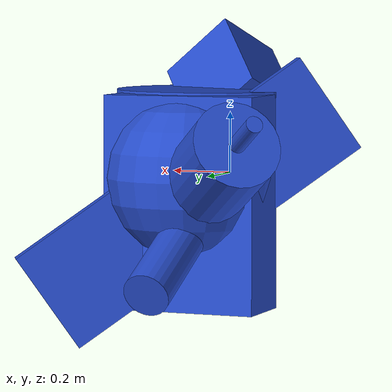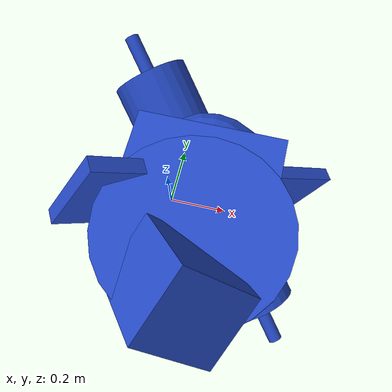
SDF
<?xml version='1.0'?>
<sdf version='1.6'>
  <model name='Blue_complex'>
    <link name='link_0'>
      <inertial>
        <mass>0.0837758</mass>
        <inertia>
          <ixx>0.00382824</ixx>
          <ixy>0</ixy>
          <ixz>0</ixz>
          <iyy>0.00532515</iyy>
          <iyz>0</iyz>
          <izz>0.00223663</izz>
        </inertia>
        <pose frame=''>0 0 0 0 -0 0</pose>
      </inertial>
      <pose frame=''>0.108369 0.082303 -0.093925 0 -0 0</pose>
      <visual name='visual'>
        <pose frame=''>0 0 0 0 -0 0</pose>
        <geometry>
          <box>
            <size>0.517102 0.230169 0.70383</size>
          </box>
        </geometry>
        <material>
          <lighting>1</lighting>
          <script>
            <uri>file://media/materials/scripts/gazebo.material</uri>
            <name>Gazebo/Blue</name>
          </script>
          <ambient>0 0 1 0</ambient>
          <diffuse>0 0 1 0</diffuse>
          <specular>0.01 0.01 0.01 1</specular>
          <emissive>0 0 0 1</emissive>
          <shader type='vertex'>
            <normal_map>__default__</normal_map>
          </shader>
        </material>
        <transparency>0</transparency>
        <cast_shadows>1</cast_shadows>
      </visual>
      <collision name='collision'>
        <laser_retro>0</laser_retro>
        <max_contacts>10</max_contacts>
        <pose frame=''>0 0 0 0 -0 0</pose>
        <geometry>
          <box>
            <size>0.517102 0.230169 0.70383</size>
          </box>
        </geometry>
        <surface>
          <friction>
            <ode>
              <mu>1</mu>
              <mu2>1</mu2>
              <fdir1>0 0 0</fdir1>
              <slip1>0</slip1>
              <slip2>0</slip2>
            </ode>
            <torsional>
              <coefficient>1</coefficient>
              <patch_radius>0</patch_radius>
              <surface_radius>0</surface_radius>
              <use_patch_radius>1</use_patch_radius>
              <ode>
                <slip>0</slip>
              </ode>
            </torsional>
          </friction>
          <bounce>
            <restitution_coefficient>0</restitution_coefficient>
            <threshold>1e+06</threshold>
          </bounce>
          <contact>
            <collide_without_contact>0</collide_without_contact>
            <collide_without_contact_bitmask>1</collide_without_contact_bitmask>
            <collide_bitmask>1</collide_bitmask>
            <ode>
              <soft_cfm>0</soft_cfm>
              <soft_erp>0.2</soft_erp>
              <kp>1e+13</kp>
              <kd>1</kd>
              <max_vel>0.01</max_vel>
              <min_depth>0</min_depth>
            </ode>
            <bullet>
              <split_impulse>1</split_impulse>
              <split_impulse_penetration_threshold>-0.01</split_impulse_penetration_threshold>
              <soft_cfm>0</soft_cfm>
              <soft_erp>0.2</soft_erp>
              <kp>1e+13</kp>
              <kd>1</kd>
            </bullet>
          </contact>
        </surface>
      </collision>
    </link>
    <link name='link_1'>
      <inertial>
        <mass>0.158198</mass>
        <inertia>
          <ixx>0.00462748</ixx>
          <ixy>0</ixy>
          <ixz>0</ixz>
          <iyy>0.00462748</iyy>
          <iyz>0</iyz>
          <izz>0.00462748</izz>
        </inertia>
        <pose frame=''>0 0 0 0 -0 0</pose>
      </inertial>
      <pose frame=''>0.108369 0.094761 -0.012431 0 -0 0</pose>
      <visual name='visual'>
        <pose frame=''>0 0 0 0 -0 0</pose>
        <geometry>
          <sphere>
            <radius>0.270422</radius>
          </sphere>
        </geometry>
        <material>
          <lighting>1</lighting>
          <script>
            <uri>file://media/materials/scripts/gazebo.material</uri>
            <name>Gazebo/Blue</name>
          </script>
          <ambient>0 0 1 0</ambient>
          <diffuse>0 0 1 0</diffuse>
          <specular>0.01 0.01 0.01 1</specular>
          <emissive>0 0 0 1</emissive>
          <shader type='vertex'>
            <normal_map>__default__</normal_map>
          </shader>
        </material>
        <transparency>0</transparency>
        <cast_shadows>1</cast_shadows>
      </visual>
      <collision name='collision'>
        <laser_retro>0</laser_retro>
        <max_contacts>10</max_contacts>
        <pose frame=''>0 0 0 0 -0 0</pose>
        <geometry>
          <sphere>
            <radius>0.270422</radius>
          </sphere>
        </geometry>
        <surface>
          <friction>
            <ode>
              <mu>1</mu>
              <mu2>1</mu2>
              <fdir1>0 0 0</fdir1>
              <slip1>0</slip1>
              <slip2>0</slip2>
            </ode>
            <torsional>
              <coefficient>1</coefficient>
              <patch_radius>0</patch_radius>
              <surface_radius>0</surface_radius>
              <use_patch_radius>1</use_patch_radius>
              <ode>
                <slip>0</slip>
              </ode>
            </torsional>
          </friction>
          <bounce>
            <restitution_coefficient>0</restitution_coefficient>
            <threshold>1e+06</threshold>
          </bounce>
          <contact>
            <collide_without_contact>0</collide_without_contact>
            <collide_without_contact_bitmask>1</collide_without_contact_bitmask>
            <collide_bitmask>1</collide_bitmask>
            <ode>
              <soft_cfm>0</soft_cfm>
              <soft_erp>0.2</soft_erp>
              <kp>1e+13</kp>
              <kd>1</kd>
              <max_vel>0.01</max_vel>
              <min_depth>0</min_depth>
            </ode>
            <bullet>
              <split_impulse>1</split_impulse>
              <split_impulse_penetration_threshold>-0.01</split_impulse_penetration_threshold>
              <soft_cfm>0</soft_cfm>
              <soft_erp>0.2</soft_erp>
              <kp>1e+13</kp>
              <kd>1</kd>
            </bullet>
          </contact>
        </surface>
      </collision>
    </link>
    <link name='link_2'>
      <inertial>
        <mass>0.0225405</mass>
        <inertia>
          <ixx>0.00191013</ixx>
          <ixy>0</ixy>
          <ixz>0</ixz>
          <iyy>0.00191013</iyy>
          <iyz>0</iyz>
          <izz>6.35098e-05</izz>
        </inertia>
        <pose frame=''>0 0 0 0 -0 0</pose>
      </inertial>
      <pose frame=''>0.075903 0.080195 -0.12294 1.10553 -0 0</pose>
      <visual name='visual'>
        <pose frame=''>0 0 0 0 -0 0</pose>
        <geometry>
          <cylinder>
            <radius>0.0750678</radius>
            <length>1</length>
          </cylinder>
        </geometry>
        <material>
          <lighting>1</lighting>
          <script>
            <uri>file://media/materials/scripts/gazebo.material</uri>
            <name>Gazebo/Blue</name>
          </script>
          <ambient>0 0 1 0</ambient>
          <diffuse>0 0 1 0</diffuse>
          <specular>0.01 0.01 0.01 1</specular>
          <emissive>0 0 0 1</emissive>
          <shader type='vertex'>
            <normal_map>__default__</normal_map>
          </shader>
        </material>
        <transparency>0</transparency>
        <cast_shadows>1</cast_shadows>
      </visual>
      <collision name='collision'>
        <laser_retro>0</laser_retro>
        <max_contacts>10</max_contacts>
        <pose frame=''>0 0 0 0 -0 0</pose>
        <geometry>
          <cylinder>
            <radius>0.075068</radius>
            <length>1</length>
          </cylinder>
        </geometry>
        <surface>
          <friction>
            <ode>
              <mu>1</mu>
              <mu2>1</mu2>
              <fdir1>0 0 0</fdir1>
              <slip1>0</slip1>
              <slip2>0</slip2>
            </ode>
            <torsional>
              <coefficient>1</coefficient>
              <patch_radius>0</patch_radius>
              <surface_radius>0</surface_radius>
              <use_patch_radius>1</use_patch_radius>
              <ode>
                <slip>0</slip>
              </ode>
            </torsional>
          </friction>
          <bounce>
            <restitution_coefficient>0</restitution_coefficient>
            <threshold>1e+06</threshold>
          </bounce>
          <contact>
            <collide_without_contact>0</collide_without_contact>
            <collide_without_contact_bitmask>1</collide_without_contact_bitmask>
            <collide_bitmask>1</collide_bitmask>
            <ode>
              <soft_cfm>0</soft_cfm>
              <soft_erp>0.2</soft_erp>
              <kp>1e+13</kp>
              <kd>1</kd>
              <max_vel>0.01</max_vel>
              <min_depth>0</min_depth>
            </ode>
            <bullet>
              <split_impulse>1</split_impulse>
              <split_impulse_penetration_threshold>-0.01</split_impulse_penetration_threshold>
              <soft_cfm>0</soft_cfm>
              <soft_erp>0.2</soft_erp>
              <kp>1e+13</kp>
              <kd>1</kd>
            </bullet>
          </contact>
        </surface>
      </collision>
    </link>
    <link name='link_2_clone'>
      <inertial>
        <mass>0.0819213</mass>
        <inertia>
          <ixx>0.00724624</ixx>
          <ixy>0</ixy>
          <ixz>0</ixz>
          <iyy>0.00724624</iyy>
          <iyz>0</iyz>
          <izz>0.000838935</izz>
        </inertia>
        <pose frame=''>0 0 0 0 -0 0</pose>
      </inertial>
      <pose frame=''>0.108369 0.094761 -0.093925 2.048 -0.329966 0.559782</pose>
      <visual name='visual'>
        <pose frame=''>0 0 0 0 -0 0</pose>
        <geometry>
          <cylinder>
            <radius>0.143114</radius>
            <length>1</length>
          </cylinder>
        </geometry>
        <material>
          <lighting>1</lighting>
          <script>
            <uri>file://media/materials/scripts/gazebo.material</uri>
            <name>Gazebo/Blue</name>
          </script>
          <ambient>0 0 1 0</ambient>
          <diffuse>0 0 1 0</diffuse>
          <specular>0.01 0.01 0.01 1</specular>
          <emissive>0 0 0 1</emissive>
          <shader type='vertex'>
            <normal_map>__default__</normal_map>
          </shader>
          <shader type='pixel'/>
        </material>
        <transparency>0</transparency>
        <cast_shadows>1</cast_shadows>
      </visual>
      <collision name='collision'>
        <laser_retro>0</laser_retro>
        <max_contacts>10</max_contacts>
        <pose frame=''>0 0 0 0 -0 0</pose>
        <geometry>
          <cylinder>
            <radius>0.143114</radius>
            <length>1</length>
          </cylinder>
        </geometry>
        <surface>
          <friction>
            <ode>
              <mu>1</mu>
              <mu2>1</mu2>
              <fdir1>0 0 0</fdir1>
              <slip1>0</slip1>
              <slip2>0</slip2>
            </ode>
            <torsional>
              <coefficient>1</coefficient>
              <patch_radius>0</patch_radius>
              <surface_radius>0</surface_radius>
              <use_patch_radius>1</use_patch_radius>
              <ode>
                <slip>0</slip>
              </ode>
            </torsional>
          </friction>
          <bounce>
            <restitution_coefficient>0</restitution_coefficient>
            <threshold>1e+06</threshold>
          </bounce>
          <contact>
            <collide_without_contact>0</collide_without_contact>
            <collide_without_contact_bitmask>1</collide_without_contact_bitmask>
            <collide_bitmask>1</collide_bitmask>
            <ode>
              <soft_cfm>0</soft_cfm>
              <soft_erp>0.2</soft_erp>
              <kp>1e+13</kp>
              <kd>1</kd>
              <max_vel>0.01</max_vel>
              <min_depth>0</min_depth>
            </ode>
            <bullet>
              <split_impulse>1</split_impulse>
              <split_impulse_penetration_threshold>-0.01</split_impulse_penetration_threshold>
              <soft_cfm>0</soft_cfm>
              <soft_erp>0.2</soft_erp>
              <kp>1e+13</kp>
              <kd>1</kd>
            </bullet>
          </contact>
        </surface>
      </collision>
    </link>
    <link name='link_2_clone_clone'>
      <inertial>
        <mass>0.00392473</mass>
        <inertia>
          <ixx>0.000578317</ixx>
          <ixy>0</ixy>
          <ixz>0</ixz>
          <iyy>0.000578317</iyy>
          <iyz>0</iyz>
          <izz>1.45086e-06</izz>
        </inertia>
        <pose frame=''>0 0 0 0 -0 0</pose>
      </inertial>
      <pose frame=''>0.108369 0.094761 -0.093925 2.048 -0.329966 0.559782</pose>
      <visual name='visual'>
        <pose frame=''>0 0 0 0 -0 0</pose>
        <geometry>
          <cylinder>
            <radius>0.0271909</radius>
            <length>1.32891</length>
          </cylinder>
        </geometry>
        <material>
          <lighting>1</lighting>
          <script>
            <uri>file://media/materials/scripts/gazebo.material</uri>
            <name>Gazebo/Blue</name>
          </script>
          <ambient>0 0 1 0</ambient>
          <diffuse>0 0 1 0</diffuse>
          <specular>0.01 0.01 0.01 1</specular>
          <emissive>0 0 0 1</emissive>
          <shader type='vertex'>
            <normal_map>__default__</normal_map>
          </shader>
          <shader type='pixel'/>
        </material>
        <transparency>0</transparency>
        <cast_shadows>1</cast_shadows>
      </visual>
      <collision name='collision'>
        <laser_retro>0</laser_retro>
        <max_contacts>10</max_contacts>
        <pose frame=''>0 0 0 0 -0 0</pose>
        <geometry>
          <cylinder>
            <radius>0.027191</radius>
            <length>1.32891</length>
          </cylinder>
        </geometry>
        <surface>
          <friction>
            <ode>
              <mu>1</mu>
              <mu2>1</mu2>
              <fdir1>0 0 0</fdir1>
              <slip1>0</slip1>
              <slip2>0</slip2>
            </ode>
            <torsional>
              <coefficient>1</coefficient>
              <patch_radius>0</patch_radius>
              <surface_radius>0</surface_radius>
              <use_patch_radius>1</use_patch_radius>
              <ode>
                <slip>0</slip>
              </ode>
            </torsional>
          </friction>
          <bounce>
            <restitution_coefficient>0</restitution_coefficient>
            <threshold>1e+06</threshold>
          </bounce>
          <contact>
            <collide_without_contact>0</collide_without_contact>
            <collide_without_contact_bitmask>1</collide_without_contact_bitmask>
            <collide_bitmask>1</collide_bitmask>
            <ode>
              <soft_cfm>0</soft_cfm>
              <soft_erp>0.2</soft_erp>
              <kp>1e+13</kp>
              <kd>1</kd>
              <max_vel>0.01</max_vel>
              <min_depth>0</min_depth>
            </ode>
            <bullet>
              <split_impulse>1</split_impulse>
              <split_impulse_penetration_threshold>-0.01</split_impulse_penetration_threshold>
              <soft_cfm>0</soft_cfm>
              <soft_erp>0.2</soft_erp>
              <kp>1e+13</kp>
              <kd>1</kd>
            </bullet>
          </contact>
        </surface>
      </collision>
    </link>
    <link name='link_3_clone'>
      <inertial>
        <mass>0.0232589</mass>
        <inertia>
          <ixx>0.000257219</ixx>
          <ixy>0</ixy>
          <ixz>0</ixz>
          <iyy>0.00274627</iyy>
          <iyz>0</iyz>
          <izz>0.00250166</izz>
        </inertia>
        <pose frame=''>0 0 0 0 -0 0</pose>
      </inertial>
      <pose frame=''>0.108369 0.094761 -0.093925 -0 0.606722 0.525087</pose>
      <visual name='visual'>
        <pose frame=''>0 0 0 0 -0 0</pose>
        <geometry>
          <box>
            <size>1.13465 0.057033 0.359798</size>
          </box>
        </geometry>
        <material>
          <lighting>1</lighting>
          <script>
            <uri>file://media/materials/scripts/gazebo.material</uri>
            <name>Gazebo/Blue</name>
          </script>
          <ambient>0 0 1 0</ambient>
          <diffuse>0 0 1 0</diffuse>
          <specular>0.01 0.01 0.01 1</specular>
          <emissive>0 0 0 1</emissive>
          <shader type='vertex'>
            <normal_map>__default__</normal_map>
          </shader>
          <shader type='pixel'/>
        </material>
        <transparency>0</transparency>
        <cast_shadows>1</cast_shadows>
      </visual>
      <collision name='collision'>
        <laser_retro>0</laser_retro>
        <max_contacts>10</max_contacts>
        <pose frame=''>0 0 0 0 -0 0</pose>
        <geometry>
          <box>
            <size>1.13465 0.057033 0.359798</size>
          </box>
        </geometry>
        <surface>
          <friction>
            <ode>
              <mu>1</mu>
              <mu2>1</mu2>
              <fdir1>0 0 0</fdir1>
              <slip1>0</slip1>
              <slip2>0</slip2>
            </ode>
            <torsional>
              <coefficient>1</coefficient>
              <patch_radius>0</patch_radius>
              <surface_radius>0</surface_radius>
              <use_patch_radius>1</use_patch_radius>
              <ode>
                <slip>0</slip>
              </ode>
            </torsional>
          </friction>
          <bounce>
            <restitution_coefficient>0</restitution_coefficient>
            <threshold>1e+06</threshold>
          </bounce>
          <contact>
            <collide_without_contact>0</collide_without_contact>
            <collide_without_contact_bitmask>1</collide_without_contact_bitmask>
            <collide_bitmask>1</collide_bitmask>
            <ode>
              <soft_cfm>0</soft_cfm>
              <soft_erp>0.2</soft_erp>
              <kp>1e+13</kp>
              <kd>1</kd>
              <max_vel>0.01</max_vel>
              <min_depth>0</min_depth>
            </ode>
            <bullet>
              <split_impulse>1</split_impulse>
              <split_impulse_penetration_threshold>-0.01</split_impulse_penetration_threshold>
              <soft_cfm>0</soft_cfm>
              <soft_erp>0.2</soft_erp>
              <kp>1e+13</kp>
              <kd>1</kd>
            </bullet>
          </contact>
        </surface>
      </collision>
    </link>
    <link name='link_4'>
      <inertial>
        <mass>0.00832024</mass>
        <inertia>
          <ixx>0.000216734</ixx>
          <ixy>0</ixy>
          <ixz>0</ixz>
          <iyy>0.000216734</iyy>
          <iyz>0</iyz>
          <izz>0.000432926</izz>
        </inertia>
        <pose frame=''>0 0 0 0 -0 0</pose>
      </inertial>
      <pose frame=''>0.132392 -0.173728 0.256461 0 -0 0</pose>
      <visual name='visual'>
        <pose frame=''>0 0 0 0 -0 0</pose>
        <geometry>
          <cylinder>
            <radius>0.322592</radius>
            <length>0.0197713</length>
          </cylinder>
        </geometry>
        <material>
          <lighting>1</lighting>
          <script>
            <uri>file://media/materials/scripts/gazebo.material</uri>
            <name>Gazebo/Blue</name>
          </script>
          <ambient>0 0 1 0</ambient>
          <diffuse>0 0 1 0</diffuse>
          <specular>0.01 0.01 0.01 1</specular>
          <emissive>0 0 0 1</emissive>
          <shader type='vertex'>
            <normal_map>__default__</normal_map>
          </shader>
        </material>
        <transparency>0</transparency>
        <cast_shadows>1</cast_shadows>
      </visual>
      <collision name='collision'>
        <laser_retro>0</laser_retro>
        <max_contacts>10</max_contacts>
        <pose frame=''>0 0 0 0 -0 0</pose>
        <geometry>
          <cylinder>
            <radius>0.322592</radius>
            <length>0.019771</length>
          </cylinder>
        </geometry>
        <surface>
          <friction>
            <ode>
              <mu>1</mu>
              <mu2>1</mu2>
              <fdir1>0 0 0</fdir1>
              <slip1>0</slip1>
              <slip2>0</slip2>
            </ode>
            <torsional>
              <coefficient>1</coefficient>
              <patch_radius>0</patch_radius>
              <surface_radius>0</surface_radius>
              <use_patch_radius>1</use_patch_radius>
              <ode>
                <slip>0</slip>
              </ode>
            </torsional>
          </friction>
          <bounce>
            <restitution_coefficient>0</restitution_coefficient>
            <threshold>1e+06</threshold>
          </bounce>
          <contact>
            <collide_without_contact>0</collide_without_contact>
            <collide_without_contact_bitmask>1</collide_without_contact_bitmask>
            <collide_bitmask>1</collide_bitmask>
            <ode>
              <soft_cfm>0</soft_cfm>
              <soft_erp>0.2</soft_erp>
              <kp>1e+13</kp>
              <kd>1</kd>
              <max_vel>0.01</max_vel>
              <min_depth>0</min_depth>
            </ode>
            <bullet>
              <split_impulse>1</split_impulse>
              <split_impulse_penetration_threshold>-0.01</split_impulse_penetration_threshold>
              <soft_cfm>0</soft_cfm>
              <soft_erp>0.2</soft_erp>
              <kp>1e+13</kp>
              <kd>1</kd>
            </bullet>
          </contact>
        </surface>
      </collision>
    </link>
    <link name='link_5'>
      <inertial>
        <mass>0.0227008</mass>
        <inertia>
          <ixx>0.000277248</ixx>
          <ixy>0</ixy>
          <ixz>0</ixz>
          <iyy>0.000335637</iyy>
          <iyz>0</iyz>
          <izz>0.000308375</izz>
        </inertia>
        <pose frame=''>0 0 0 0 -0 0</pose>
      </inertial>
      <pose frame=''>0.132392 -0.367796 0.254612 0.585915 -0.675444 -0.815191</pose>
      <visual name='visual'>
        <pose frame=''>0 0 0 0 -0 0</pose>
        <geometry>
          <box>
            <size>0.31135 0.257047 0.283697</size>
          </box>
        </geometry>
        <material>
          <lighting>1</lighting>
          <script>
            <uri>file://media/materials/scripts/gazebo.material</uri>
            <name>Gazebo/Blue</name>
          </script>
          <ambient>0 0 1 0</ambient>
          <diffuse>0 0 1 0</diffuse>
          <specular>0.01 0.01 0.01 1</specular>
          <emissive>0 0 0 1</emissive>
          <shader type='vertex'>
            <normal_map>__default__</normal_map>
          </shader>
        </material>
        <transparency>0</transparency>
        <cast_shadows>1</cast_shadows>
      </visual>
      <collision name='collision'>
        <laser_retro>0</laser_retro>
        <max_contacts>10</max_contacts>
        <pose frame=''>0 0 0 0 -0 0</pose>
        <geometry>
          <box>
            <size>0.31135 0.257047 0.283697</size>
          </box>
        </geometry>
        <surface>
          <friction>
            <ode>
              <mu>1</mu>
              <mu2>1</mu2>
              <fdir1>0 0 0</fdir1>
              <slip1>0</slip1>
              <slip2>0</slip2>
            </ode>
            <torsional>
              <coefficient>1</coefficient>
              <patch_radius>0</patch_radius>
              <surface_radius>0</surface_radius>
              <use_patch_radius>1</use_patch_radius>
              <ode>
                <slip>0</slip>
              </ode>
            </torsional>
          </friction>
          <bounce>
            <restitution_coefficient>0</restitution_coefficient>
            <threshold>1e+06</threshold>
          </bounce>
          <contact>
            <collide_without_contact>0</collide_without_contact>
            <collide_without_contact_bitmask>1</collide_without_contact_bitmask>
            <collide_bitmask>1</collide_bitmask>
            <ode>
              <soft_cfm>0</soft_cfm>
              <soft_erp>0.2</soft_erp>
              <kp>1e+13</kp>
              <kd>1</kd>
              <max_vel>0.01</max_vel>
              <min_depth>0</min_depth>
            </ode>
            <bullet>
              <split_impulse>1</split_impulse>
              <split_impulse_penetration_threshold>-0.01</split_impulse_penetration_threshold>
              <soft_cfm>0</soft_cfm>
              <soft_erp>0.2</soft_erp>
              <kp>1e+13</kp>
              <kd>1</kd>
            </bullet>
          </contact>
        </surface>
      </collision>
    </link>
    <joint name='link_0_JOINT_1' type='fixed'>
      <parent>link_0</parent>
      <child>link_2</child>
      <pose frame=''>0 0 0 0 -0 0</pose>
      <physics>
        <ode>
          <limit>
            <cfm>0</cfm>
            <erp>0.2</erp>
          </limit>
          <suspension>
            <cfm>0</cfm>
            <erp>0.2</erp>
          </suspension>
        </ode>
      </physics>
    </joint>
    <joint name='link_0_JOINT_2' type='fixed'>
      <parent>link_0</parent>
      <child>link_2_clone</child>
      <pose frame=''>0 0 0 0 -0 0</pose>
      <physics>
        <ode>
          <limit>
            <cfm>0</cfm>
            <erp>0.2</erp>
          </limit>
          <suspension>
            <cfm>0</cfm>
            <erp>0.2</erp>
          </suspension>
        </ode>
      </physics>
    </joint>
    <joint name='link_0_JOINT_3' type='fixed'>
      <parent>link_0</parent>
      <child>link_2_clone_clone</child>
      <pose frame=''>0 0 0 0 -0 0</pose>
      <physics>
        <ode>
          <limit>
            <cfm>0</cfm>
            <erp>0.2</erp>
          </limit>
          <suspension>
            <cfm>0</cfm>
            <erp>0.2</erp>
          </suspension>
        </ode>
      </physics>
    </joint>
    <joint name='link_0_JOINT_5' type='fixed'>
      <parent>link_0</parent>
      <child>link_3_clone</child>
      <pose frame=''>0 0 0 0 -0 0</pose>
      <physics>
        <ode>
          <limit>
            <cfm>0</cfm>
            <erp>0.2</erp>
          </limit>
          <suspension>
            <cfm>0</cfm>
            <erp>0.2</erp>
          </suspension>
        </ode>
      </physics>
    </joint>
    <joint name='link_0_JOINT_7' type='fixed'>
      <parent>link_0</parent>
      <child>link_4</child>
      <pose frame=''>0 0 0 0 -0 0</pose>
      <physics>
        <ode>
          <limit>
            <cfm>0</cfm>
            <erp>0.2</erp>
          </limit>
          <suspension>
            <cfm>0</cfm>
            <erp>0.2</erp>
          </suspension>
        </ode>
      </physics>
    </joint>
    <joint name='link_1_JOINT_0' type='fixed'>
      <parent>link_1</parent>
      <child>link_0</child>
      <pose frame=''>0 0 0 0 -0 0</pose>
      <physics>
        <ode>
          <limit>
            <cfm>0</cfm>
            <erp>0.2</erp>
          </limit>
          <suspension>
            <cfm>0</cfm>
            <erp>0.2</erp>
          </suspension>
        </ode>
      </physics>
    </joint>
    <joint name='link_4_JOINT_8' type='fixed'>
      <parent>link_4</parent>
      <child>link_5</child>
      <pose frame=''>0 0 0 0 -0 0</pose>
      <physics>
        <ode>
          <limit>
            <cfm>0</cfm>
            <erp>0.2</erp>
          </limit>
          <suspension>
            <cfm>0</cfm>
            <erp>0.2</erp>
          </suspension>
        </ode>
      </physics>
    </joint>
    <static>1</static>
    <allow_auto_disable>0</allow_auto_disable>
  </model>
</sdf>
